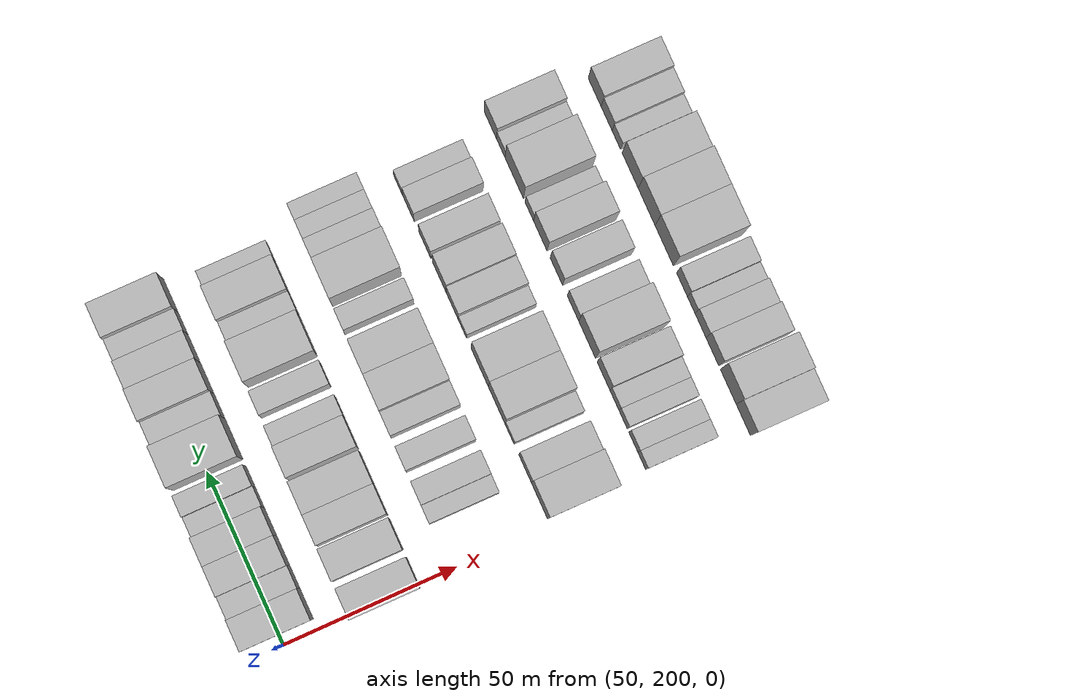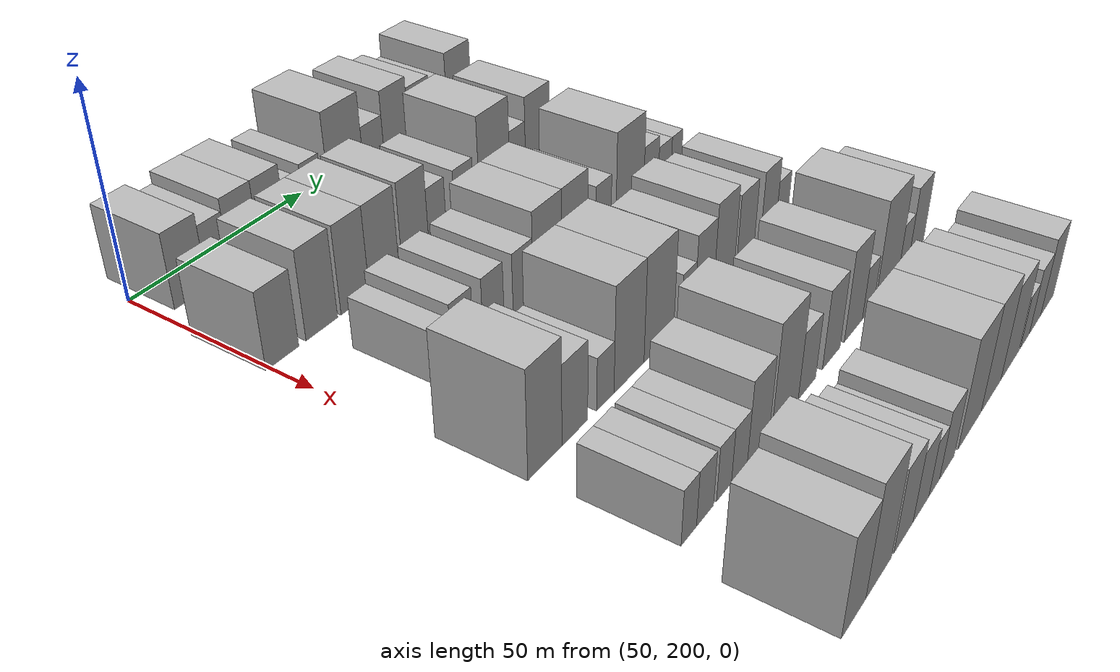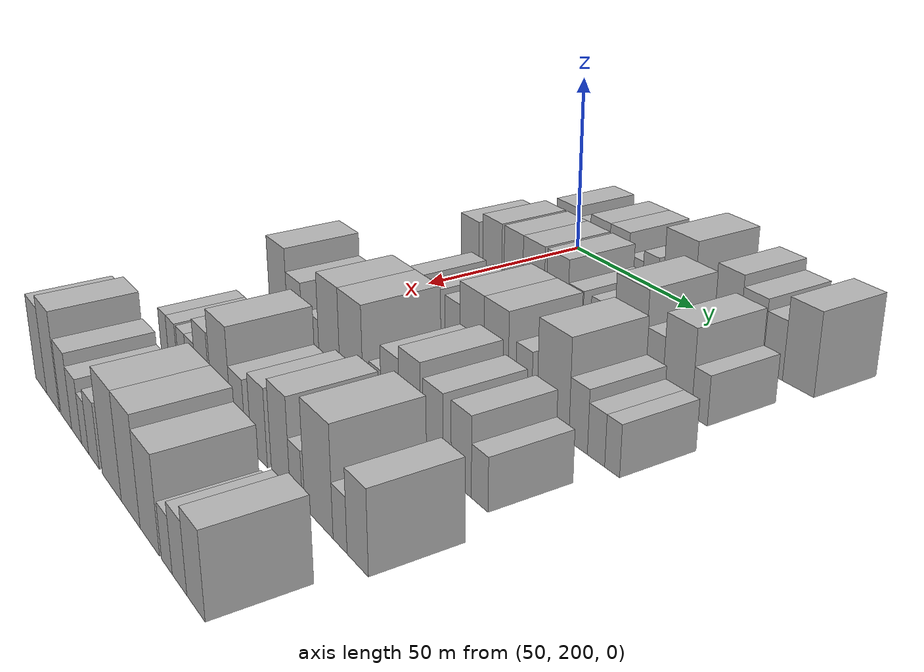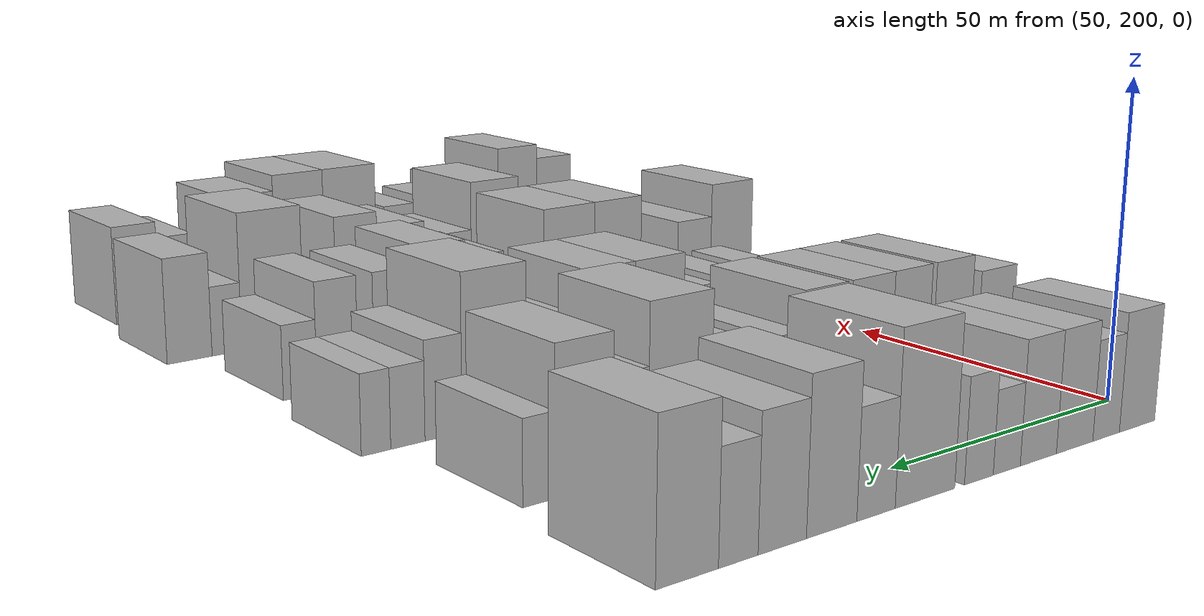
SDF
<sdf version="1.6">
 <world name="default">
  <model name="building_85">
   <static>1</static>
   <pose>50.0000 207.4317 0 0.000000 0.000000 0.000000</pose>
   <link name="link">
    <pose>0 0 9.00 0 0 0</pose>
    <collision name="collision"><geometry><box><size>20.0000 8.9323 18.0000</size></box></geometry></collision>
    <visual name="visual">
     <cast_shadows>0</cast_shadows>
     <geometry><box><size>20.0000 8.9323 18.0000</size></box></geometry>
     <material>
      <script>
       <uri>model://HANNAS_wall/materials/scripts</uri>
       <uri>model://HANNAS_wall/materials/textures</uri>
       <name>vrc/HANNAS_wall</name>
      </script>
     </material>
    </visual>
   </link>
  </model>
  <model name="building_86">
   <static>1</static>
   <pose>50.0000 215.1381 0 0.000000 0.000000 0.000000</pose>
   <link name="link">
    <pose>0 0 7.50 0 0 0</pose>
    <collision name="collision"><geometry><box><size>20.0000 6.4806 15.0000</size></box></geometry></collision>
    <visual name="visual">
     <cast_shadows>0</cast_shadows>
     <geometry><box><size>20.0000 6.4806 15.0000</size></box></geometry>
     <material>
      <script>
       <uri>model://HANNAS_wall/materials/scripts</uri>
       <uri>model://HANNAS_wall/materials/textures</uri>
       <name>vrc/HANNAS_wall</name>
      </script>
     </material>
    </visual>
   </link>
  </model>
  <model name="building_87">
   <static>1</static>
   <pose>50.0000 222.6527 0 0.000000 0.000000 0.000000</pose>
   <link name="link">
    <pose>0 0 9.00 0 0 0</pose>
    <collision name="collision"><geometry><box><size>20.0000 8.5486 18.0000</size></box></geometry></collision>
    <visual name="visual">
     <cast_shadows>0</cast_shadows>
     <geometry><box><size>20.0000 8.5486 18.0000</size></box></geometry>
     <material>
      <script>
       <uri>model://HANNAS_wall/materials/scripts</uri>
       <uri>model://HANNAS_wall/materials/textures</uri>
       <name>vrc/HANNAS_wall</name>
      </script>
     </material>
    </visual>
   </link>
  </model>
  <model name="building_88">
   <static>1</static>
   <pose>50.0000 230.9932 0 0.000000 0.000000 0.000000</pose>
   <link name="link">
    <pose>0 0 9.00 0 0 0</pose>
    <collision name="collision"><geometry><box><size>20.0000 8.1324 18.0000</size></box></geometry></collision>
    <visual name="visual">
     <cast_shadows>0</cast_shadows>
     <geometry><box><size>20.0000 8.1324 18.0000</size></box></geometry>
     <material>
      <script>
       <uri>model://HANNAS_wall/materials/scripts</uri>
       <uri>model://HANNAS_wall/materials/textures</uri>
       <name>vrc/HANNAS_wall</name>
      </script>
     </material>
    </visual>
   </link>
  </model>
  <model name="building_89">
   <static>1</static>
   <pose>50.0000 237.9870 0 0.000000 0.000000 0.000000</pose>
   <link name="link">
    <pose>0 0 6.00 0 0 0</pose>
    <collision name="collision"><geometry><box><size>20.0000 5.8553 12.0000</size></box></geometry></collision>
    <visual name="visual">
     <cast_shadows>0</cast_shadows>
     <geometry><box><size>20.0000 5.8553 12.0000</size></box></geometry>
     <material>
      <script>
       <uri>model://HANNAS_wall/materials/scripts</uri>
       <uri>model://HANNAS_wall/materials/textures</uri>
       <name>vrc/HANNAS_wall</name>
      </script>
     </material>
    </visual>
   </link>
  </model>
  <model name="building_90">
   <static>1</static>
   <pose>50.0000 243.9280 0 0.000000 0.000000 0.000000</pose>
   <link name="link">
    <pose>0 0 7.50 0 0 0</pose>
    <collision name="collision"><geometry><box><size>20.0000 6.0268 15.0000</size></box></geometry></collision>
    <visual name="visual">
     <cast_shadows>0</cast_shadows>
     <geometry><box><size>20.0000 6.0268 15.0000</size></box></geometry>
     <material>
      <script>
       <uri>model://HANNAS_wall/materials/scripts</uri>
       <uri>model://HANNAS_wall/materials/textures</uri>
       <name>vrc/HANNAS_wall</name>
      </script>
     </material>
    </visual>
   </link>
  </model>
  <model name="building_91">
   <static>1</static>
   <pose>50.0000 254.8231 0 0.000000 0.000000 0.000000</pose>
   <link name="link">
    <pose>0 0 12.00 0 0 0</pose>
    <collision name="collision"><geometry><box><size>20.0000 11.7634 24.0000</size></box></geometry></collision>
    <visual name="visual">
     <cast_shadows>0</cast_shadows>
     <geometry><box><size>20.0000 11.7634 24.0000</size></box></geometry>
     <material>
      <script>
       <uri>model://HANNAS_wall/materials/scripts</uri>
       <uri>model://HANNAS_wall/materials/textures</uri>
       <name>vrc/HANNAS_wall</name>
      </script>
     </material>
    </visual>
   </link>
  </model>
  <model name="building_92">
   <static>1</static>
   <pose>50.0000 264.2938 0 0.000000 0.000000 0.000000</pose>
   <link name="link">
    <pose>0 0 7.50 0 0 0</pose>
    <collision name="collision"><geometry><box><size>20.0000 7.1781 15.0000</size></box></geometry></collision>
    <visual name="visual">
     <cast_shadows>0</cast_shadows>
     <geometry><box><size>20.0000 7.1781 15.0000</size></box></geometry>
     <material>
      <script>
       <uri>model://HANNAS_wall/materials/scripts</uri>
       <uri>model://HANNAS_wall/materials/textures</uri>
       <name>vrc/HANNAS_wall</name>
      </script>
     </material>
    </visual>
   </link>
  </model>
  <model name="building_93">
   <static>1</static>
   <pose>50.0000 272.3719 0 0.000000 0.000000 0.000000</pose>
   <link name="link">
    <pose>0 0 10.50 0 0 0</pose>
    <collision name="collision"><geometry><box><size>20.0000 8.9779 21.0000</size></box></geometry></collision>
    <visual name="visual">
     <cast_shadows>0</cast_shadows>
     <geometry><box><size>20.0000 8.9779 21.0000</size></box></geometry>
     <material>
      <script>
       <uri>model://HANNAS_wall/materials/scripts</uri>
       <uri>model://HANNAS_wall/materials/textures</uri>
       <name>vrc/HANNAS_wall</name>
      </script>
     </material>
    </visual>
   </link>
  </model>
  <model name="building_94">
   <static>1</static>
   <pose>50.0000 280.9614 0 0.000000 0.000000 0.000000</pose>
   <link name="link">
    <pose>0 0 9.00 0 0 0</pose>
    <collision name="collision"><geometry><box><size>20.0000 8.2011 18.0000</size></box></geometry></collision>
    <visual name="visual">
     <cast_shadows>0</cast_shadows>
     <geometry><box><size>20.0000 8.2011 18.0000</size></box></geometry>
     <material>
      <script>
       <uri>model://HANNAS_wall/materials/scripts</uri>
       <uri>model://HANNAS_wall/materials/textures</uri>
       <name>vrc/HANNAS_wall</name>
      </script>
     </material>
    </visual>
   </link>
  </model>
  <model name="building_95">
   <static>1</static>
   <pose>50.0000 288.2701 0 0.000000 0.000000 0.000000</pose>
   <link name="link">
    <pose>0 0 7.50 0 0 0</pose>
    <collision name="collision"><geometry><box><size>20.0000 6.4163 15.0000</size></box></geometry></collision>
    <visual name="visual">
     <cast_shadows>0</cast_shadows>
     <geometry><box><size>20.0000 6.4163 15.0000</size></box></geometry>
     <material>
      <script>
       <uri>model://HANNAS_wall/materials/scripts</uri>
       <uri>model://HANNAS_wall/materials/textures</uri>
       <name>vrc/HANNAS_wall</name>
      </script>
     </material>
    </visual>
   </link>
  </model>
  <model name="building_96">
   <static>1</static>
   <pose>50.0000 296.3338 0 0.000000 0.000000 0.000000</pose>
   <link name="link">
    <pose>0 0 10.50 0 0 0</pose>
    <collision name="collision"><geometry><box><size>20.0000 9.7112 21.0000</size></box></geometry></collision>
    <visual name="visual">
     <cast_shadows>0</cast_shadows>
     <geometry><box><size>20.0000 9.7112 21.0000</size></box></geometry>
     <material>
      <script>
       <uri>model://HANNAS_wall/materials/scripts</uri>
       <uri>model://HANNAS_wall/materials/textures</uri>
       <name>vrc/HANNAS_wall</name>
      </script>
     </material>
    </visual>
   </link>
  </model>
  <model name="building_202">
   <static>1</static>
   <pose>79.0000 203.3804 0 0.000000 0.000000 0.000000</pose>
   <link name="link">
    <pose>0 0 9.00 0 0 0</pose>
    <collision name="collision"><geometry><box><size>20.0000 8.9085 18.0000</size></box></geometry></collision>
    <visual name="visual">
     <cast_shadows>0</cast_shadows>
     <geometry><box><size>20.0000 8.9085 18.0000</size></box></geometry>
     <material>
      <script>
       <uri>model://HANNAS_wall/materials/scripts</uri>
       <uri>model://HANNAS_wall/materials/textures</uri>
       <name>vrc/HANNAS_wall</name>
      </script>
     </material>
    </visual>
   </link>
  </model>
  <model name="building_203">
   <static>1</static>
   <pose>79.0000 214.3647 0 0.000000 0.000000 0.000000</pose>
   <link name="link">
    <pose>0 0 10.50 0 0 0</pose>
    <collision name="collision"><geometry><box><size>20.0000 9.0601 21.0000</size></box></geometry></collision>
    <visual name="visual">
     <cast_shadows>0</cast_shadows>
     <geometry><box><size>20.0000 9.0601 21.0000</size></box></geometry>
     <material>
      <script>
       <uri>model://HANNAS_wall/materials/scripts</uri>
       <uri>model://HANNAS_wall/materials/textures</uri>
       <name>vrc/HANNAS_wall</name>
      </script>
     </material>
    </visual>
   </link>
  </model>
  <model name="building_204">
   <static>1</static>
   <pose>79.0000 224.1928 0 0.000000 0.000000 0.000000</pose>
   <link name="link">
    <pose>0 0 10.50 0 0 0</pose>
    <collision name="collision"><geometry><box><size>20.0000 8.5960 21.0000</size></box></geometry></collision>
    <visual name="visual">
     <cast_shadows>0</cast_shadows>
     <geometry><box><size>20.0000 8.5960 21.0000</size></box></geometry>
     <material>
      <script>
       <uri>model://HANNAS_wall/materials/scripts</uri>
       <uri>model://HANNAS_wall/materials/textures</uri>
       <name>vrc/HANNAS_wall</name>
      </script>
     </material>
    </visual>
   </link>
  </model>
  <model name="building_205">
   <static>1</static>
   <pose>79.0000 233.1930 0 0.000000 0.000000 0.000000</pose>
   <link name="link">
    <pose>0 0 10.50 0 0 0</pose>
    <collision name="collision"><geometry><box><size>20.0000 9.4045 21.0000</size></box></geometry></collision>
    <visual name="visual">
     <cast_shadows>0</cast_shadows>
     <geometry><box><size>20.0000 9.4045 21.0000</size></box></geometry>
     <material>
      <script>
       <uri>model://HANNAS_wall/materials/scripts</uri>
       <uri>model://HANNAS_wall/materials/textures</uri>
       <name>vrc/HANNAS_wall</name>
      </script>
     </material>
    </visual>
   </link>
  </model>
  <model name="building_206">
   <static>1</static>
   <pose>79.0000 243.3657 0 0.000000 0.000000 0.000000</pose>
   <link name="link">
    <pose>0 0 10.50 0 0 0</pose>
    <collision name="collision"><geometry><box><size>20.0000 8.9407 21.0000</size></box></geometry></collision>
    <visual name="visual">
     <cast_shadows>0</cast_shadows>
     <geometry><box><size>20.0000 8.9407 21.0000</size></box></geometry>
     <material>
      <script>
       <uri>model://HANNAS_wall/materials/scripts</uri>
       <uri>model://HANNAS_wall/materials/textures</uri>
       <name>vrc/HANNAS_wall</name>
      </script>
     </material>
    </visual>
   </link>
  </model>
  <model name="building_207">
   <static>1</static>
   <pose>79.0000 250.8709 0 0.000000 0.000000 0.000000</pose>
   <link name="link">
    <pose>0 0 7.50 0 0 0</pose>
    <collision name="collision"><geometry><box><size>20.0000 6.0698 15.0000</size></box></geometry></collision>
    <visual name="visual">
     <cast_shadows>0</cast_shadows>
     <geometry><box><size>20.0000 6.0698 15.0000</size></box></geometry>
     <material>
      <script>
       <uri>model://HANNAS_wall/materials/scripts</uri>
       <uri>model://HANNAS_wall/materials/textures</uri>
       <name>vrc/HANNAS_wall</name>
      </script>
     </material>
    </visual>
   </link>
  </model>
  <model name="building_208">
   <static>1</static>
   <pose>79.0000 260.3472 0 0.000000 0.000000 0.000000</pose>
   <link name="link">
    <pose>0 0 7.50 0 0 0</pose>
    <collision name="collision"><geometry><box><size>20.0000 6.8827 15.0000</size></box></geometry></collision>
    <visual name="visual">
     <cast_shadows>0</cast_shadows>
     <geometry><box><size>20.0000 6.8827 15.0000</size></box></geometry>
     <material>
      <script>
       <uri>model://HANNAS_wall/materials/scripts</uri>
       <uri>model://HANNAS_wall/materials/textures</uri>
       <name>vrc/HANNAS_wall</name>
      </script>
     </material>
    </visual>
   </link>
  </model>
  <model name="building_209">
   <static>1</static>
   <pose>79.0000 271.5637 0 0.000000 0.000000 0.000000</pose>
   <link name="link">
    <pose>0 0 12.00 0 0 0</pose>
    <collision name="collision"><geometry><box><size>20.0000 11.5503 24.0000</size></box></geometry></collision>
    <visual name="visual">
     <cast_shadows>0</cast_shadows>
     <geometry><box><size>20.0000 11.5503 24.0000</size></box></geometry>
     <material>
      <script>
       <uri>model://HANNAS_wall/materials/scripts</uri>
       <uri>model://HANNAS_wall/materials/textures</uri>
       <name>vrc/HANNAS_wall</name>
      </script>
     </material>
    </visual>
   </link>
  </model>
  <model name="building_210">
   <static>1</static>
   <pose>79.0000 280.4285 0 0.000000 0.000000 0.000000</pose>
   <link name="link">
    <pose>0 0 7.50 0 0 0</pose>
    <collision name="collision"><geometry><box><size>20.0000 6.1794 15.0000</size></box></geometry></collision>
    <visual name="visual">
     <cast_shadows>0</cast_shadows>
     <geometry><box><size>20.0000 6.1794 15.0000</size></box></geometry>
     <material>
      <script>
       <uri>model://HANNAS_wall/materials/scripts</uri>
       <uri>model://HANNAS_wall/materials/textures</uri>
       <name>vrc/HANNAS_wall</name>
      </script>
     </material>
    </visual>
   </link>
  </model>
  <model name="building_211">
   <static>1</static>
   <pose>79.0000 288.4120 0 0.000000 0.000000 0.000000</pose>
   <link name="link">
    <pose>0 0 10.50 0 0 0</pose>
    <collision name="collision"><geometry><box><size>20.0000 9.7876 21.0000</size></box></geometry></collision>
    <visual name="visual">
     <cast_shadows>0</cast_shadows>
     <geometry><box><size>20.0000 9.7876 21.0000</size></box></geometry>
     <material>
      <script>
       <uri>model://HANNAS_wall/materials/scripts</uri>
       <uri>model://HANNAS_wall/materials/textures</uri>
       <name>vrc/HANNAS_wall</name>
      </script>
     </material>
    </visual>
   </link>
  </model>
  <model name="building_212">
   <static>1</static>
   <pose>79.0000 295.8580 0 0.000000 0.000000 0.000000</pose>
   <link name="link">
    <pose>0 0 6.00 0 0 0</pose>
    <collision name="collision"><geometry><box><size>20.0000 5.1045 12.0000</size></box></geometry></collision>
    <visual name="visual">
     <cast_shadows>0</cast_shadows>
     <geometry><box><size>20.0000 5.1045 12.0000</size></box></geometry>
     <material>
      <script>
       <uri>model://HANNAS_wall/materials/scripts</uri>
       <uri>model://HANNAS_wall/materials/textures</uri>
       <name>vrc/HANNAS_wall</name>
      </script>
     </material>
    </visual>
   </link>
  </model>
  <model name="building_319">
   <static>1</static>
   <pose>108.0000 215.8192 0 0.000000 0.000000 0.000000</pose>
   <link name="link">
    <pose>0 0 6.00 0 0 0</pose>
    <collision name="collision"><geometry><box><size>20.0000 5.2271 12.0000</size></box></geometry></collision>
    <visual name="visual">
     <cast_shadows>0</cast_shadows>
     <geometry><box><size>20.0000 5.2271 12.0000</size></box></geometry>
     <material>
      <script>
       <uri>model://HANNAS_wall/materials/scripts</uri>
       <uri>model://HANNAS_wall/materials/textures</uri>
       <name>vrc/HANNAS_wall</name>
      </script>
     </material>
    </visual>
   </link>
  </model>
  <model name="building_320">
   <static>1</static>
   <pose>108.0000 221.8121 0 0.000000 0.000000 0.000000</pose>
   <link name="link">
    <pose>0 0 7.50 0 0 0</pose>
    <collision name="collision"><geometry><box><size>20.0000 6.7587 15.0000</size></box></geometry></collision>
    <visual name="visual">
     <cast_shadows>0</cast_shadows>
     <geometry><box><size>20.0000 6.7587 15.0000</size></box></geometry>
     <material>
      <script>
       <uri>model://HANNAS_wall/materials/scripts</uri>
       <uri>model://HANNAS_wall/materials/textures</uri>
       <name>vrc/HANNAS_wall</name>
      </script>
     </material>
    </visual>
   </link>
  </model>
  <model name="building_321">
   <static>1</static>
   <pose>108.0000 231.6386 0 0.000000 0.000000 0.000000</pose>
   <link name="link">
    <pose>0 0 7.50 0 0 0</pose>
    <collision name="collision"><geometry><box><size>20.0000 6.8943 15.0000</size></box></geometry></collision>
    <visual name="visual">
     <cast_shadows>0</cast_shadows>
     <geometry><box><size>20.0000 6.8943 15.0000</size></box></geometry>
     <material>
      <script>
       <uri>model://HANNAS_wall/materials/scripts</uri>
       <uri>model://HANNAS_wall/materials/textures</uri>
       <name>vrc/HANNAS_wall</name>
      </script>
     </material>
    </visual>
   </link>
  </model>
  <model name="building_322">
   <static>1</static>
   <pose>108.0000 241.5224 0 0.000000 0.000000 0.000000</pose>
   <link name="link">
    <pose>0 0 7.50 0 0 0</pose>
    <collision name="collision"><geometry><box><size>20.0000 6.8735 15.0000</size></box></geometry></collision>
    <visual name="visual">
     <cast_shadows>0</cast_shadows>
     <geometry><box><size>20.0000 6.8735 15.0000</size></box></geometry>
     <material>
      <script>
       <uri>model://HANNAS_wall/materials/scripts</uri>
       <uri>model://HANNAS_wall/materials/textures</uri>
       <name>vrc/HANNAS_wall</name>
      </script>
     </material>
    </visual>
   </link>
  </model>
  <model name="building_323">
   <static>1</static>
   <pose>108.0000 250.1217 0 0.000000 0.000000 0.000000</pose>
   <link name="link">
    <pose>0 0 10.50 0 0 0</pose>
    <collision name="collision"><geometry><box><size>20.0000 10.3251 21.0000</size></box></geometry></collision>
    <visual name="visual">
     <cast_shadows>0</cast_shadows>
     <geometry><box><size>20.0000 10.3251 21.0000</size></box></geometry>
     <material>
      <script>
       <uri>model://HANNAS_wall/materials/scripts</uri>
       <uri>model://HANNAS_wall/materials/textures</uri>
       <name>vrc/HANNAS_wall</name>
      </script>
     </material>
    </visual>
   </link>
  </model>
  <model name="building_324">
   <static>1</static>
   <pose>108.0000 260.2296 0 0.000000 0.000000 0.000000</pose>
   <link name="link">
    <pose>0 0 10.50 0 0 0</pose>
    <collision name="collision"><geometry><box><size>20.0000 9.8906 21.0000</size></box></geometry></collision>
    <visual name="visual">
     <cast_shadows>0</cast_shadows>
     <geometry><box><size>20.0000 9.8906 21.0000</size></box></geometry>
     <material>
      <script>
       <uri>model://HANNAS_wall/materials/scripts</uri>
       <uri>model://HANNAS_wall/materials/textures</uri>
       <name>vrc/HANNAS_wall</name>
      </script>
     </material>
    </visual>
   </link>
  </model>
  <model name="building_325">
   <static>1</static>
   <pose>108.0000 271.2651 0 0.000000 0.000000 0.000000</pose>
   <link name="link">
    <pose>0 0 7.50 0 0 0</pose>
    <collision name="collision"><geometry><box><size>20.0000 6.1803 15.0000</size></box></geometry></collision>
    <visual name="visual">
     <cast_shadows>0</cast_shadows>
     <geometry><box><size>20.0000 6.1803 15.0000</size></box></geometry>
     <material>
      <script>
       <uri>model://HANNAS_wall/materials/scripts</uri>
       <uri>model://HANNAS_wall/materials/textures</uri>
       <name>vrc/HANNAS_wall</name>
      </script>
     </material>
    </visual>
   </link>
  </model>
  <model name="building_326">
   <static>1</static>
   <pose>108.0000 282.1740 0 0.000000 0.000000 0.000000</pose>
   <link name="link">
    <pose>0 0 12.00 0 0 0</pose>
    <collision name="collision"><geometry><box><size>20.0000 11.6376 24.0000</size></box></geometry></collision>
    <visual name="visual">
     <cast_shadows>0</cast_shadows>
     <geometry><box><size>20.0000 11.6376 24.0000</size></box></geometry>
     <material>
      <script>
       <uri>model://HANNAS_wall/materials/scripts</uri>
       <uri>model://HANNAS_wall/materials/textures</uri>
       <name>vrc/HANNAS_wall</name>
      </script>
     </material>
    </visual>
   </link>
  </model>
  <model name="building_327">
   <static>1</static>
   <pose>108.0000 291.2031 0 0.000000 0.000000 0.000000</pose>
   <link name="link">
    <pose>0 0 7.50 0 0 0</pose>
    <collision name="collision"><geometry><box><size>20.0000 6.4206 15.0000</size></box></geometry></collision>
    <visual name="visual">
     <cast_shadows>0</cast_shadows>
     <geometry><box><size>20.0000 6.4206 15.0000</size></box></geometry>
     <material>
      <script>
       <uri>model://HANNAS_wall/materials/scripts</uri>
       <uri>model://HANNAS_wall/materials/textures</uri>
       <name>vrc/HANNAS_wall</name>
      </script>
     </material>
    </visual>
   </link>
  </model>
  <model name="building_328">
   <static>1</static>
   <pose>108.0000 297.2943 0 0.000000 0.000000 0.000000</pose>
   <link name="link">
    <pose>0 0 6.00 0 0 0</pose>
    <collision name="collision"><geometry><box><size>20.0000 5.7617 12.0000</size></box></geometry></collision>
    <visual name="visual">
     <cast_shadows>0</cast_shadows>
     <geometry><box><size>20.0000 5.7617 12.0000</size></box></geometry>
     <material>
      <script>
       <uri>model://HANNAS_wall/materials/scripts</uri>
       <uri>model://HANNAS_wall/materials/textures</uri>
       <name>vrc/HANNAS_wall</name>
      </script>
     </material>
    </visual>
   </link>
  </model>
  <model name="building_329">
   <static>1</static>
   <pose>108.0000 302.5847 0 0.000000 0.000000 0.000000</pose>
   <link name="link">
    <pose>0 0 6.00 0 0 0</pose>
    <collision name="collision"><geometry><box><size>20.0000 4.8190 12.0000</size></box></geometry></collision>
    <visual name="visual">
     <cast_shadows>0</cast_shadows>
     <geometry><box><size>20.0000 4.8190 12.0000</size></box></geometry>
     <material>
      <script>
       <uri>model://HANNAS_wall/materials/scripts</uri>
       <uri>model://HANNAS_wall/materials/textures</uri>
       <name>vrc/HANNAS_wall</name>
      </script>
     </material>
    </visual>
   </link>
  </model>
  <model name="building_430">
   <static>1</static>
   <pose>137.0000 207.0230 0 0.000000 0.000000 0.000000</pose>
   <link name="link">
    <pose>0 0 12.00 0 0 0</pose>
    <collision name="collision"><geometry><box><size>20.0000 10.3784 24.0000</size></box></geometry></collision>
    <visual name="visual">
     <cast_shadows>0</cast_shadows>
     <geometry><box><size>20.0000 10.3784 24.0000</size></box></geometry>
     <material>
      <script>
       <uri>model://HANNAS_wall/materials/scripts</uri>
       <uri>model://HANNAS_wall/materials/textures</uri>
       <name>vrc/HANNAS_wall</name>
      </script>
     </material>
    </visual>
   </link>
  </model>
  <model name="building_431">
   <static>1</static>
   <pose>137.0000 216.3144 0 0.000000 0.000000 0.000000</pose>
   <link name="link">
    <pose>0 0 9.00 0 0 0</pose>
    <collision name="collision"><geometry><box><size>20.0000 8.2045 18.0000</size></box></geometry></collision>
    <visual name="visual">
     <cast_shadows>0</cast_shadows>
     <geometry><box><size>20.0000 8.2045 18.0000</size></box></geometry>
     <material>
      <script>
       <uri>model://HANNAS_wall/materials/scripts</uri>
       <uri>model://HANNAS_wall/materials/textures</uri>
       <name>vrc/HANNAS_wall</name>
      </script>
     </material>
    </visual>
   </link>
  </model>
  <model name="building_432">
   <static>1</static>
   <pose>137.0000 226.3565 0 0.000000 0.000000 0.000000</pose>
   <link name="link">
    <pose>0 0 6.00 0 0 0</pose>
    <collision name="collision"><geometry><box><size>20.0000 5.8797 12.0000</size></box></geometry></collision>
    <visual name="visual">
     <cast_shadows>0</cast_shadows>
     <geometry><box><size>20.0000 5.8797 12.0000</size></box></geometry>
     <material>
      <script>
       <uri>model://HANNAS_wall/materials/scripts</uri>
       <uri>model://HANNAS_wall/materials/textures</uri>
       <name>vrc/HANNAS_wall</name>
      </script>
     </material>
    </visual>
   </link>
  </model>
  <model name="building_433">
   <static>1</static>
   <pose>137.0000 234.6310 0 0.000000 0.000000 0.000000</pose>
   <link name="link">
    <pose>0 0 12.00 0 0 0</pose>
    <collision name="collision"><geometry><box><size>20.0000 10.6691 24.0000</size></box></geometry></collision>
    <visual name="visual">
     <cast_shadows>0</cast_shadows>
     <geometry><box><size>20.0000 10.6691 24.0000</size></box></geometry>
     <material>
      <script>
       <uri>model://HANNAS_wall/materials/scripts</uri>
       <uri>model://HANNAS_wall/materials/textures</uri>
       <name>vrc/HANNAS_wall</name>
      </script>
     </material>
    </visual>
   </link>
  </model>
  <model name="building_434">
   <static>1</static>
   <pose>137.0000 245.5631 0 0.000000 0.000000 0.000000</pose>
   <link name="link">
    <pose>0 0 12.00 0 0 0</pose>
    <collision name="collision"><geometry><box><size>20.0000 11.1951 24.0000</size></box></geometry></collision>
    <visual name="visual">
     <cast_shadows>0</cast_shadows>
     <geometry><box><size>20.0000 11.1951 24.0000</size></box></geometry>
     <material>
      <script>
       <uri>model://HANNAS_wall/materials/scripts</uri>
       <uri>model://HANNAS_wall/materials/textures</uri>
       <name>vrc/HANNAS_wall</name>
      </script>
     </material>
    </visual>
   </link>
  </model>
  <model name="building_435">
   <static>1</static>
   <pose>137.0000 256.8279 0 0.000000 0.000000 0.000000</pose>
   <link name="link">
    <pose>0 0 6.00 0 0 0</pose>
    <collision name="collision"><geometry><box><size>20.0000 5.3345 12.0000</size></box></geometry></collision>
    <visual name="visual">
     <cast_shadows>0</cast_shadows>
     <geometry><box><size>20.0000 5.3345 12.0000</size></box></geometry>
     <material>
      <script>
       <uri>model://HANNAS_wall/materials/scripts</uri>
       <uri>model://HANNAS_wall/materials/textures</uri>
       <name>vrc/HANNAS_wall</name>
      </script>
     </material>
    </visual>
   </link>
  </model>
  <model name="building_436">
   <static>1</static>
   <pose>137.0000 263.4653 0 0.000000 0.000000 0.000000</pose>
   <link name="link">
    <pose>0 0 9.00 0 0 0</pose>
    <collision name="collision"><geometry><box><size>20.0000 7.9404 18.0000</size></box></geometry></collision>
    <visual name="visual">
     <cast_shadows>0</cast_shadows>
     <geometry><box><size>20.0000 7.9404 18.0000</size></box></geometry>
     <material>
      <script>
       <uri>model://HANNAS_wall/materials/scripts</uri>
       <uri>model://HANNAS_wall/materials/textures</uri>
       <name>vrc/HANNAS_wall</name>
      </script>
     </material>
    </visual>
   </link>
  </model>
  <model name="building_437">
   <static>1</static>
   <pose>137.0000 271.8978 0 0.000000 0.000000 0.000000</pose>
   <link name="link">
    <pose>0 0 10.50 0 0 0</pose>
    <collision name="collision"><geometry><box><size>20.0000 8.9246 21.0000</size></box></geometry></collision>
    <visual name="visual">
     <cast_shadows>0</cast_shadows>
     <geometry><box><size>20.0000 8.9246 21.0000</size></box></geometry>
     <material>
      <script>
       <uri>model://HANNAS_wall/materials/scripts</uri>
       <uri>model://HANNAS_wall/materials/textures</uri>
       <name>vrc/HANNAS_wall</name>
      </script>
     </material>
    </visual>
   </link>
  </model>
  <model name="building_438">
   <static>1</static>
   <pose>137.0000 281.2889 0 0.000000 0.000000 0.000000</pose>
   <link name="link">
    <pose>0 0 9.00 0 0 0</pose>
    <collision name="collision"><geometry><box><size>20.0000 7.8576 18.0000</size></box></geometry></collision>
    <visual name="visual">
     <cast_shadows>0</cast_shadows>
     <geometry><box><size>20.0000 7.8576 18.0000</size></box></geometry>
     <material>
      <script>
       <uri>model://HANNAS_wall/materials/scripts</uri>
       <uri>model://HANNAS_wall/materials/textures</uri>
       <name>vrc/HANNAS_wall</name>
      </script>
     </material>
    </visual>
   </link>
  </model>
  <model name="building_439">
   <static>1</static>
   <pose>137.0000 291.9408 0 0.000000 0.000000 0.000000</pose>
   <link name="link">
    <pose>0 0 9.00 0 0 0</pose>
    <collision name="collision"><geometry><box><size>20.0000 7.4462 18.0000</size></box></geometry></collision>
    <visual name="visual">
     <cast_shadows>0</cast_shadows>
     <geometry><box><size>20.0000 7.4462 18.0000</size></box></geometry>
     <material>
      <script>
       <uri>model://HANNAS_wall/materials/scripts</uri>
       <uri>model://HANNAS_wall/materials/textures</uri>
       <name>vrc/HANNAS_wall</name>
      </script>
     </material>
    </visual>
   </link>
  </model>
  <model name="building_440">
   <static>1</static>
   <pose>137.0000 298.6397 0 0.000000 0.000000 0.000000</pose>
   <link name="link">
    <pose>0 0 6.00 0 0 0</pose>
    <collision name="collision"><geometry><box><size>20.0000 5.9517 12.0000</size></box></geometry></collision>
    <visual name="visual">
     <cast_shadows>0</cast_shadows>
     <geometry><box><size>20.0000 5.9517 12.0000</size></box></geometry>
     <material>
      <script>
       <uri>model://HANNAS_wall/materials/scripts</uri>
       <uri>model://HANNAS_wall/materials/textures</uri>
       <name>vrc/HANNAS_wall</name>
      </script>
     </material>
    </visual>
   </link>
  </model>
  <model name="building_545">
   <static>1</static>
   <pose>166.0000 205.6453 0 0.000000 0.000000 0.000000</pose>
   <link name="link">
    <pose>0 0 6.00 0 0 0</pose>
    <collision name="collision"><geometry><box><size>20.0000 5.0708 12.0000</size></box></geometry></collision>
    <visual name="visual">
     <cast_shadows>0</cast_shadows>
     <geometry><box><size>20.0000 5.0708 12.0000</size></box></geometry>
     <material>
      <script>
       <uri>model://HANNAS_wall/materials/scripts</uri>
       <uri>model://HANNAS_wall/materials/textures</uri>
       <name>vrc/HANNAS_wall</name>
      </script>
     </material>
    </visual>
   </link>
  </model>
  <model name="building_546">
   <static>1</static>
   <pose>166.0000 211.0690 0 0.000000 0.000000 0.000000</pose>
   <link name="link">
    <pose>0 0 6.00 0 0 0</pose>
    <collision name="collision"><geometry><box><size>20.0000 5.7765 12.0000</size></box></geometry></collision>
    <visual name="visual">
     <cast_shadows>0</cast_shadows>
     <geometry><box><size>20.0000 5.7765 12.0000</size></box></geometry>
     <material>
      <script>
       <uri>model://HANNAS_wall/materials/scripts</uri>
       <uri>model://HANNAS_wall/materials/textures</uri>
       <name>vrc/HANNAS_wall</name>
      </script>
     </material>
    </visual>
   </link>
  </model>
  <model name="building_547">
   <static>1</static>
   <pose>166.0000 217.6084 0 0.000000 0.000000 0.000000</pose>
   <link name="link">
    <pose>0 0 6.00 0 0 0</pose>
    <collision name="collision"><geometry><box><size>20.0000 5.3023 12.0000</size></box></geometry></collision>
    <visual name="visual">
     <cast_shadows>0</cast_shadows>
     <geometry><box><size>20.0000 5.3023 12.0000</size></box></geometry>
     <material>
      <script>
       <uri>model://HANNAS_wall/materials/scripts</uri>
       <uri>model://HANNAS_wall/materials/textures</uri>
       <name>vrc/HANNAS_wall</name>
      </script>
     </material>
    </visual>
   </link>
  </model>
  <model name="building_548">
   <static>1</static>
   <pose>166.0000 223.1769 0 0.000000 0.000000 0.000000</pose>
   <link name="link">
    <pose>0 0 6.00 0 0 0</pose>
    <collision name="collision"><geometry><box><size>20.0000 5.8347 12.0000</size></box></geometry></collision>
    <visual name="visual">
     <cast_shadows>0</cast_shadows>
     <geometry><box><size>20.0000 5.8347 12.0000</size></box></geometry>
     <material>
      <script>
       <uri>model://HANNAS_wall/materials/scripts</uri>
       <uri>model://HANNAS_wall/materials/textures</uri>
       <name>vrc/HANNAS_wall</name>
      </script>
     </material>
    </visual>
   </link>
  </model>
  <model name="building_549">
   <static>1</static>
   <pose>166.0000 230.2319 0 0.000000 0.000000 0.000000</pose>
   <link name="link">
    <pose>0 0 9.00 0 0 0</pose>
    <collision name="collision"><geometry><box><size>20.0000 8.2752 18.0000</size></box></geometry></collision>
    <visual name="visual">
     <cast_shadows>0</cast_shadows>
     <geometry><box><size>20.0000 8.2752 18.0000</size></box></geometry>
     <material>
      <script>
       <uri>model://HANNAS_wall/materials/scripts</uri>
       <uri>model://HANNAS_wall/materials/textures</uri>
       <name>vrc/HANNAS_wall</name>
      </script>
     </material>
    </visual>
   </link>
  </model>
  <model name="building_550">
   <static>1</static>
   <pose>166.0000 240.7976 0 0.000000 0.000000 0.000000</pose>
   <link name="link">
    <pose>0 0 12.00 0 0 0</pose>
    <collision name="collision"><geometry><box><size>20.0000 10.8563 24.0000</size></box></geometry></collision>
    <visual name="visual">
     <cast_shadows>0</cast_shadows>
     <geometry><box><size>20.0000 10.8563 24.0000</size></box></geometry>
     <material>
      <script>
       <uri>model://HANNAS_wall/materials/scripts</uri>
       <uri>model://HANNAS_wall/materials/textures</uri>
       <name>vrc/HANNAS_wall</name>
      </script>
     </material>
    </visual>
   </link>
  </model>
  <model name="building_551">
   <static>1</static>
   <pose>166.0000 249.9391 0 0.000000 0.000000 0.000000</pose>
   <link name="link">
    <pose>0 0 7.50 0 0 0</pose>
    <collision name="collision"><geometry><box><size>20.0000 7.4266 15.0000</size></box></geometry></collision>
    <visual name="visual">
     <cast_shadows>0</cast_shadows>
     <geometry><box><size>20.0000 7.4266 15.0000</size></box></geometry>
     <material>
      <script>
       <uri>model://HANNAS_wall/materials/scripts</uri>
       <uri>model://HANNAS_wall/materials/textures</uri>
       <name>vrc/HANNAS_wall</name>
      </script>
     </material>
    </visual>
   </link>
  </model>
  <model name="building_552">
   <static>1</static>
   <pose>166.0000 260.6736 0 0.000000 0.000000 0.000000</pose>
   <link name="link">
    <pose>0 0 9.00 0 0 0</pose>
    <collision name="collision"><geometry><box><size>20.0000 8.0425 18.0000</size></box></geometry></collision>
    <visual name="visual">
     <cast_shadows>0</cast_shadows>
     <geometry><box><size>20.0000 8.0425 18.0000</size></box></geometry>
     <material>
      <script>
       <uri>model://HANNAS_wall/materials/scripts</uri>
       <uri>model://HANNAS_wall/materials/textures</uri>
       <name>vrc/HANNAS_wall</name>
      </script>
     </material>
    </visual>
   </link>
  </model>
  <model name="building_553">
   <static>1</static>
   <pose>166.0000 271.0476 0 0.000000 0.000000 0.000000</pose>
   <link name="link">
    <pose>0 0 10.50 0 0 0</pose>
    <collision name="collision"><geometry><box><size>20.0000 8.7055 21.0000</size></box></geometry></collision>
    <visual name="visual">
     <cast_shadows>0</cast_shadows>
     <geometry><box><size>20.0000 8.7055 21.0000</size></box></geometry>
     <material>
      <script>
       <uri>model://HANNAS_wall/materials/scripts</uri>
       <uri>model://HANNAS_wall/materials/textures</uri>
       <name>vrc/HANNAS_wall</name>
      </script>
     </material>
    </visual>
   </link>
  </model>
  <model name="building_554">
   <static>1</static>
   <pose>166.0000 278.2040 0 0.000000 0.000000 0.000000</pose>
   <link name="link">
    <pose>0 0 6.00 0 0 0</pose>
    <collision name="collision"><geometry><box><size>20.0000 5.6073 12.0000</size></box></geometry></collision>
    <visual name="visual">
     <cast_shadows>0</cast_shadows>
     <geometry><box><size>20.0000 5.6073 12.0000</size></box></geometry>
     <material>
      <script>
       <uri>model://HANNAS_wall/materials/scripts</uri>
       <uri>model://HANNAS_wall/materials/textures</uri>
       <name>vrc/HANNAS_wall</name>
      </script>
     </material>
    </visual>
   </link>
  </model>
  <model name="building_555">
   <static>1</static>
   <pose>166.0000 288.0026 0 0.000000 0.000000 0.000000</pose>
   <link name="link">
    <pose>0 0 12.00 0 0 0</pose>
    <collision name="collision"><geometry><box><size>20.0000 11.9899 24.0000</size></box></geometry></collision>
    <visual name="visual">
     <cast_shadows>0</cast_shadows>
     <geometry><box><size>20.0000 11.9899 24.0000</size></box></geometry>
     <material>
      <script>
       <uri>model://HANNAS_wall/materials/scripts</uri>
       <uri>model://HANNAS_wall/materials/textures</uri>
       <name>vrc/HANNAS_wall</name>
      </script>
     </material>
    </visual>
   </link>
  </model>
  <model name="building_556">
   <static>1</static>
   <pose>166.0000 296.7942 0 0.000000 0.000000 0.000000</pose>
   <link name="link">
    <pose>0 0 6.00 0 0 0</pose>
    <collision name="collision"><geometry><box><size>20.0000 5.5933 12.0000</size></box></geometry></collision>
    <visual name="visual">
     <cast_shadows>0</cast_shadows>
     <geometry><box><size>20.0000 5.5933 12.0000</size></box></geometry>
     <material>
      <script>
       <uri>model://HANNAS_wall/materials/scripts</uri>
       <uri>model://HANNAS_wall/materials/textures</uri>
       <name>vrc/HANNAS_wall</name>
      </script>
     </material>
    </visual>
   </link>
  </model>
  <model name="building_557">
   <static>1</static>
   <pose>166.0000 303.6532 0 0.000000 0.000000 0.000000</pose>
   <link name="link">
    <pose>0 0 9.00 0 0 0</pose>
    <collision name="collision"><geometry><box><size>20.0000 8.1248 18.0000</size></box></geometry></collision>
    <visual name="visual">
     <cast_shadows>0</cast_shadows>
     <geometry><box><size>20.0000 8.1248 18.0000</size></box></geometry>
     <material>
      <script>
       <uri>model://HANNAS_wall/materials/scripts</uri>
       <uri>model://HANNAS_wall/materials/textures</uri>
       <name>vrc/HANNAS_wall</name>
      </script>
     </material>
    </visual>
   </link>
  </model>
  <model name="building_662">
   <static>1</static>
   <pose>195.0000 204.5774 0 0.000000 0.000000 0.000000</pose>
   <link name="link">
    <pose>0 0 10.50 0 0 0</pose>
    <collision name="collision"><geometry><box><size>20.0000 9.0901 21.0000</size></box></geometry></collision>
    <visual name="visual">
     <cast_shadows>0</cast_shadows>
     <geometry><box><size>20.0000 9.0901 21.0000</size></box></geometry>
     <material>
      <script>
       <uri>model://HANNAS_wall/materials/scripts</uri>
       <uri>model://HANNAS_wall/materials/textures</uri>
       <name>vrc/HANNAS_wall</name>
      </script>
     </material>
    </visual>
   </link>
  </model>
  <model name="building_663">
   <static>1</static>
   <pose>195.0000 214.1954 0 0.000000 0.000000 0.000000</pose>
   <link name="link">
    <pose>0 0 12.00 0 0 0</pose>
    <collision name="collision"><geometry><box><size>20.0000 10.1459 24.0000</size></box></geometry></collision>
    <visual name="visual">
     <cast_shadows>0</cast_shadows>
     <geometry><box><size>20.0000 10.1459 24.0000</size></box></geometry>
     <material>
      <script>
       <uri>model://HANNAS_wall/materials/scripts</uri>
       <uri>model://HANNAS_wall/materials/textures</uri>
       <name>vrc/HANNAS_wall</name>
      </script>
     </material>
    </visual>
   </link>
  </model>
  <model name="building_664">
   <static>1</static>
   <pose>195.0000 224.3386 0 0.000000 0.000000 0.000000</pose>
   <link name="link">
    <pose>0 0 9.00 0 0 0</pose>
    <collision name="collision"><geometry><box><size>20.0000 8.1405 18.0000</size></box></geometry></collision>
    <visual name="visual">
     <cast_shadows>0</cast_shadows>
     <geometry><box><size>20.0000 8.1405 18.0000</size></box></geometry>
     <material>
      <script>
       <uri>model://HANNAS_wall/materials/scripts</uri>
       <uri>model://HANNAS_wall/materials/textures</uri>
       <name>vrc/HANNAS_wall</name>
      </script>
     </material>
    </visual>
   </link>
  </model>
  <model name="building_665">
   <static>1</static>
   <pose>195.0000 231.9381 0 0.000000 0.000000 0.000000</pose>
   <link name="link">
    <pose>0 0 7.50 0 0 0</pose>
    <collision name="collision"><geometry><box><size>20.0000 7.0584 15.0000</size></box></geometry></collision>
    <visual name="visual">
     <cast_shadows>0</cast_shadows>
     <geometry><box><size>20.0000 7.0584 15.0000</size></box></geometry>
     <material>
      <script>
       <uri>model://HANNAS_wall/materials/scripts</uri>
       <uri>model://HANNAS_wall/materials/textures</uri>
       <name>vrc/HANNAS_wall</name>
      </script>
     </material>
    </visual>
   </link>
  </model>
  <model name="building_666">
   <static>1</static>
   <pose>195.0000 237.9165 0 0.000000 0.000000 0.000000</pose>
   <link name="link">
    <pose>0 0 6.00 0 0 0</pose>
    <collision name="collision"><geometry><box><size>20.0000 4.8984 12.0000</size></box></geometry></collision>
    <visual name="visual">
     <cast_shadows>0</cast_shadows>
     <geometry><box><size>20.0000 4.8984 12.0000</size></box></geometry>
     <material>
      <script>
       <uri>model://HANNAS_wall/materials/scripts</uri>
       <uri>model://HANNAS_wall/materials/textures</uri>
       <name>vrc/HANNAS_wall</name>
      </script>
     </material>
    </visual>
   </link>
  </model>
  <model name="building_667">
   <static>1</static>
   <pose>195.0000 243.8791 0 0.000000 0.000000 0.000000</pose>
   <link name="link">
    <pose>0 0 7.50 0 0 0</pose>
    <collision name="collision"><geometry><box><size>20.0000 7.0269 15.0000</size></box></geometry></collision>
    <visual name="visual">
     <cast_shadows>0</cast_shadows>
     <geometry><box><size>20.0000 7.0269 15.0000</size></box></geometry>
     <material>
      <script>
       <uri>model://HANNAS_wall/materials/scripts</uri>
       <uri>model://HANNAS_wall/materials/textures</uri>
       <name>vrc/HANNAS_wall</name>
      </script>
     </material>
    </visual>
   </link>
  </model>
  <model name="building_668">
   <static>1</static>
   <pose>195.0000 255.3008 0 0.000000 0.000000 0.000000</pose>
   <link name="link">
    <pose>0 0 12.00 0 0 0</pose>
    <collision name="collision"><geometry><box><size>20.0000 11.8165 24.0000</size></box></geometry></collision>
    <visual name="visual">
     <cast_shadows>0</cast_shadows>
     <geometry><box><size>20.0000 11.8165 24.0000</size></box></geometry>
     <material>
      <script>
       <uri>model://HANNAS_wall/materials/scripts</uri>
       <uri>model://HANNAS_wall/materials/textures</uri>
       <name>vrc/HANNAS_wall</name>
      </script>
     </material>
    </visual>
   </link>
  </model>
  <model name="building_669">
   <static>1</static>
   <pose>195.0000 266.6284 0 0.000000 0.000000 0.000000</pose>
   <link name="link">
    <pose>0 0 12.00 0 0 0</pose>
    <collision name="collision"><geometry><box><size>20.0000 10.8386 24.0000</size></box></geometry></collision>
    <visual name="visual">
     <cast_shadows>0</cast_shadows>
     <geometry><box><size>20.0000 10.8386 24.0000</size></box></geometry>
     <material>
      <script>
       <uri>model://HANNAS_wall/materials/scripts</uri>
       <uri>model://HANNAS_wall/materials/textures</uri>
       <name>vrc/HANNAS_wall</name>
      </script>
     </material>
    </visual>
   </link>
  </model>
  <model name="building_670">
   <static>1</static>
   <pose>195.0000 277.2644 0 0.000000 0.000000 0.000000</pose>
   <link name="link">
    <pose>0 0 10.50 0 0 0</pose>
    <collision name="collision"><geometry><box><size>20.0000 10.4335 21.0000</size></box></geometry></collision>
    <visual name="visual">
     <cast_shadows>0</cast_shadows>
     <geometry><box><size>20.0000 10.4335 21.0000</size></box></geometry>
     <material>
      <script>
       <uri>model://HANNAS_wall/materials/scripts</uri>
       <uri>model://HANNAS_wall/materials/textures</uri>
       <name>vrc/HANNAS_wall</name>
      </script>
     </material>
    </visual>
   </link>
  </model>
  <model name="building_671">
   <static>1</static>
   <pose>195.0000 286.2092 0 0.000000 0.000000 0.000000</pose>
   <link name="link">
    <pose>0 0 6.00 0 0 0</pose>
    <collision name="collision"><geometry><box><size>20.0000 5.4561 12.0000</size></box></geometry></collision>
    <visual name="visual">
     <cast_shadows>0</cast_shadows>
     <geometry><box><size>20.0000 5.4561 12.0000</size></box></geometry>
     <material>
      <script>
       <uri>model://HANNAS_wall/materials/scripts</uri>
       <uri>model://HANNAS_wall/materials/textures</uri>
       <name>vrc/HANNAS_wall</name>
      </script>
     </material>
    </visual>
   </link>
  </model>
  <model name="building_672">
   <static>1</static>
   <pose>195.0000 292.4861 0 0.000000 0.000000 0.000000</pose>
   <link name="link">
    <pose>0 0 7.50 0 0 0</pose>
    <collision name="collision"><geometry><box><size>20.0000 7.0977 15.0000</size></box></geometry></collision>
    <visual name="visual">
     <cast_shadows>0</cast_shadows>
     <geometry><box><size>20.0000 7.0977 15.0000</size></box></geometry>
     <material>
      <script>
       <uri>model://HANNAS_wall/materials/scripts</uri>
       <uri>model://HANNAS_wall/materials/textures</uri>
       <name>vrc/HANNAS_wall</name>
      </script>
     </material>
    </visual>
   </link>
  </model>
  <model name="building_673">
   <static>1</static>
   <pose>195.0000 300.2358 0 0.000000 0.000000 0.000000</pose>
   <link name="link">
    <pose>0 0 9.00 0 0 0</pose>
    <collision name="collision"><geometry><box><size>20.0000 8.4017 18.0000</size></box></geometry></collision>
    <visual name="visual">
     <cast_shadows>0</cast_shadows>
     <geometry><box><size>20.0000 8.4017 18.0000</size></box></geometry>
     <material>
      <script>
       <uri>model://HANNAS_wall/materials/scripts</uri>
       <uri>model://HANNAS_wall/materials/textures</uri>
       <name>vrc/HANNAS_wall</name>
      </script>
     </material>
    </visual>
   </link>
  </model>
 </world>
</sdf>
